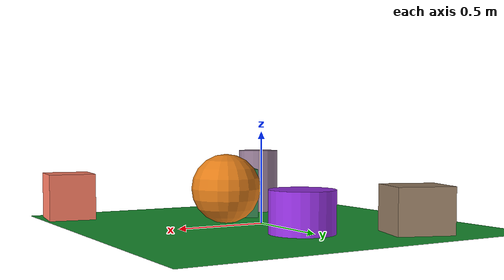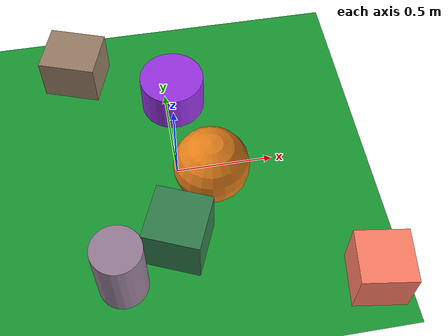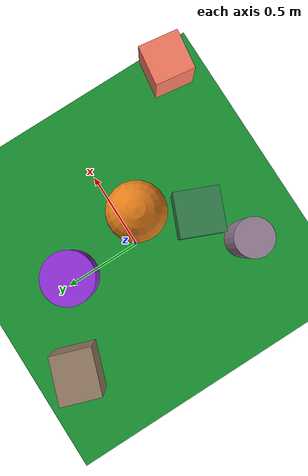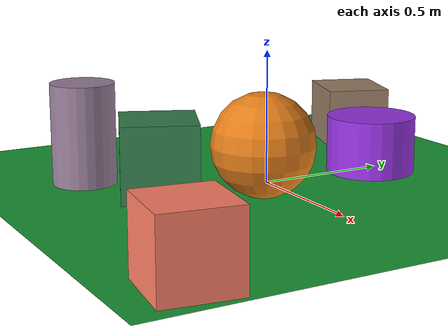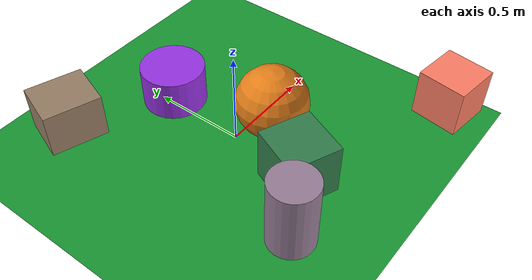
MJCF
<mujoco>
   <asset>
<texture type="skybox" builtin="gradient" rgb1="0.8 0.1 0.6" rgb2="0.3 0.5 0.1" width="500" height="500"/>
<texture name="checker_0" builtin="checker" rgb1="0.0 0.7 0.4" rgb2="0.4 0.3 0.2" width="500" height="500"/>
<texture name="flat_1" builtin="flat" rgb1="1.0 0.5 0.4" rgb2="1.0 0.5 0.4"  width="500" height="500"/>
<texture name="gradient_2" builtin="gradient" rgb1="0.9 0.4 0.9" rgb2="0.3 0.0 0.9" width="500" height="500"/>
<texture name="flat_3" builtin="flat" rgb1="0.6 0.5 0.4" rgb2="0.6 0.5 0.4"  width="500" height="500"/>
<texture name="checker_4" builtin="checker" rgb1="0.7 0.4 0.3" rgb2="0.5 0.6 0.9" width="500" height="500"/>
<texture name="flat_5" builtin="flat" rgb1="0.9 0.5 0.1" rgb2="0.9 0.5 0.1"  width="500" height="500"/><material name="checker_0_mat" reflectance="0.06479843813398956" texrepeat="10 10" texture="checker_0" texuniform="false" />
<material name="flat_1_mat" reflectance="0.07505524438153899" texture="flat_1" texuniform="true"/>
<material name="gradient_2_mat" reflectance="0.8213653933563791" texture="gradient_2" texuniform="true"/>
<material name="flat_3_mat" reflectance="0.13578846440966297" texture="flat_3" texuniform="true"/>
<material name="checker_4_mat" reflectance="0.48340823646750986" texrepeat="6 6" texture="checker_4" texuniform="false" />
<material name="flat_5_mat" reflectance="0.8594163911636226" texture="flat_5" texuniform="true"/>
   </asset>

   <worldbody>
     <geom type="plane" size="1 1 0.1" rgba="0.1 0.6 0.2 1" />
<light pos="0.0876971691118753 -0.022339886518492946 2" dir="0 0 -1" cutoff="90" diffuse="1 1 1" specular="1 1 1"/>
<light pos="-0.5258583383019324 -0.0888846909770944 2" dir="0 0 -1" cutoff="90" diffuse="1 1 1" specular="1 1 1"/>
<geom type="box" pos="-0.05 -0.42 0.14" size="0.14 0.14 0.14" material="checker_0_mat" euler="0 0 67" />
<geom type="box" pos="0.84 -0.76 0.13" size="0.13 0.13 0.13" material="flat_1_mat" euler="0 0 82" />
<geom type="cylinder" pos="0.04 0.45 0.11" size="0.17 0.11 0.11" material="gradient_2_mat" euler="0 0 83" />
<geom type="box" pos="-0.47 0.71 0.12" size="0.13 0.15 0.12" material="flat_3_mat" euler="0 0 71" />
<geom type="cylinder" pos="-0.34 -0.59 0.19" size="0.12 0.19 0.19" material="checker_4_mat" euler="0 0 58" />
<geom type="sphere" pos="0.16 -0.11 0.19" size="0.19 0.19 0.19" material="flat_5_mat" euler="0 0 11" /><camera euler="60 0 180" fovy="60" name="camera1" pos="-0.2 -1.5 1"></camera>   </worldbody>
   <visual>
      <headlight diffuse="0.7 0.7 0.7"/>
   </visual>
</mujoco>
